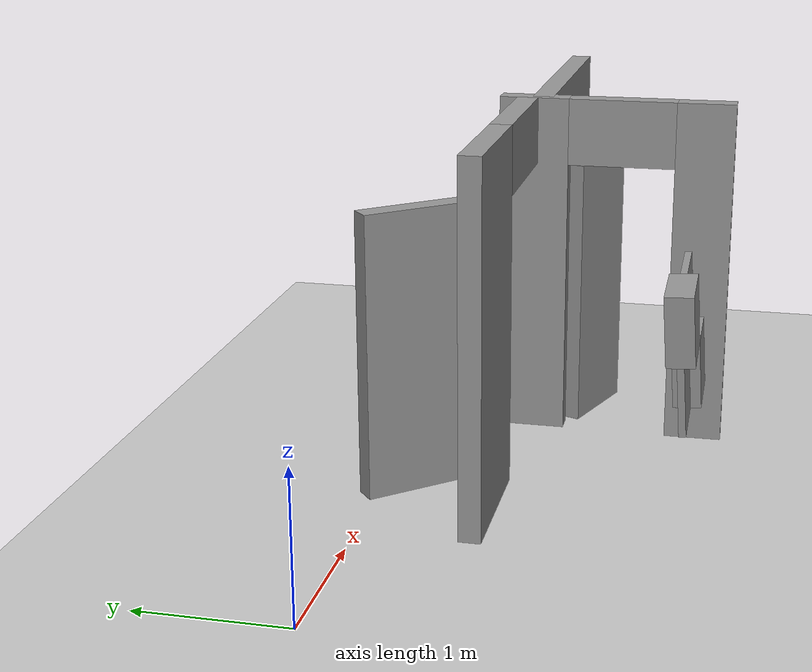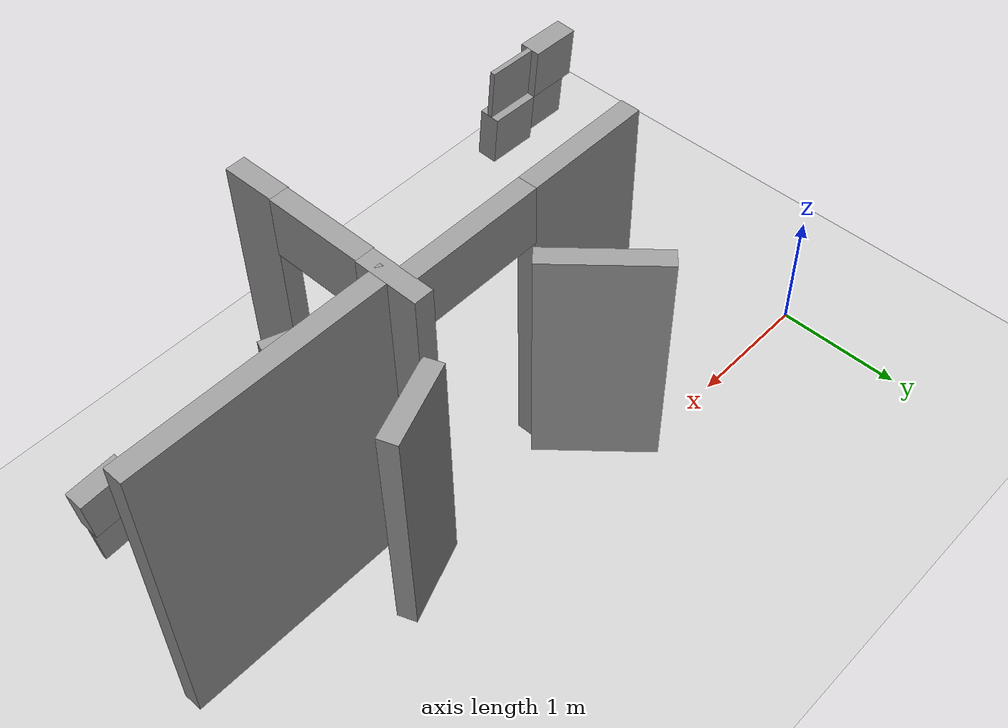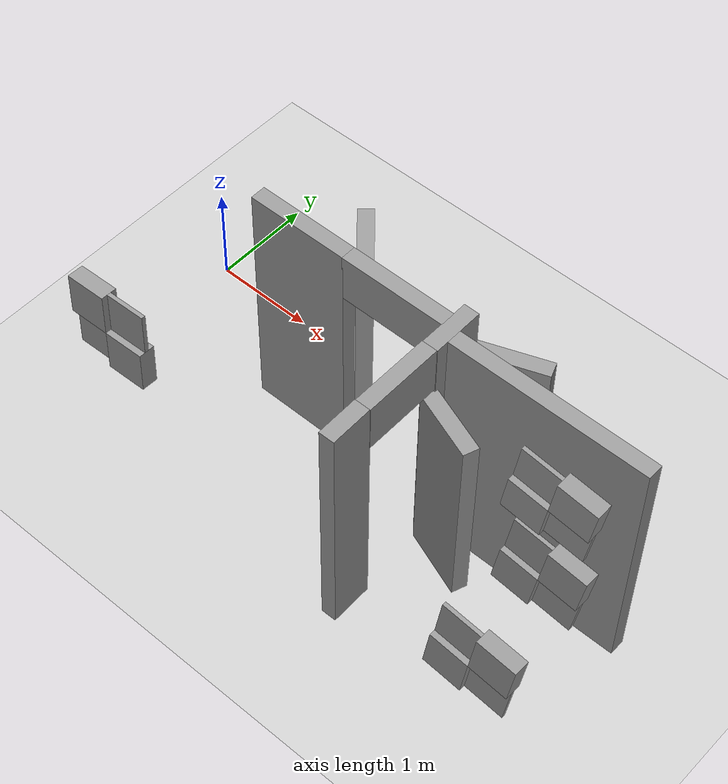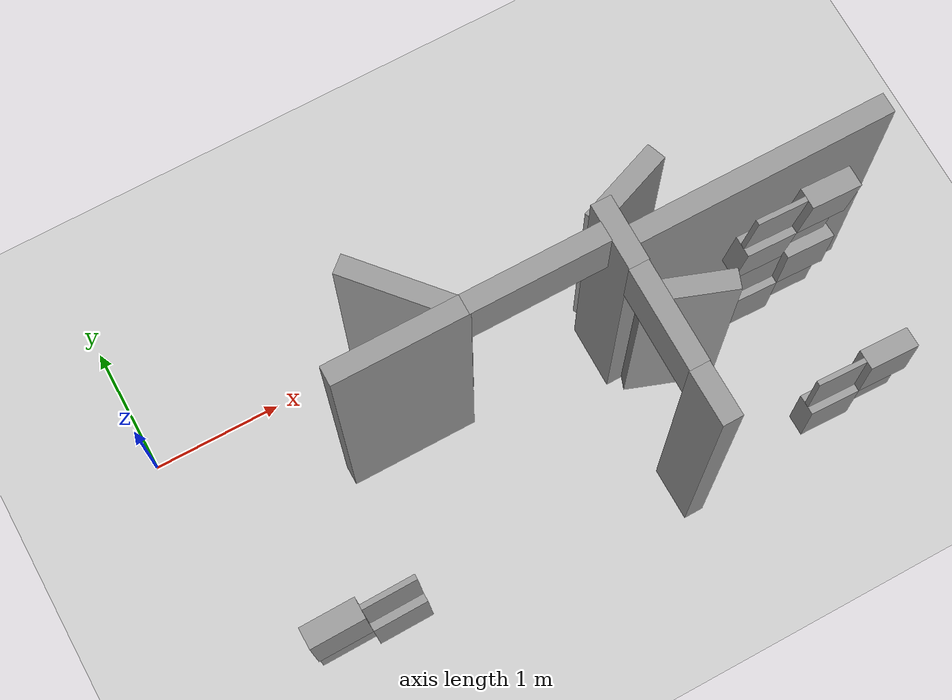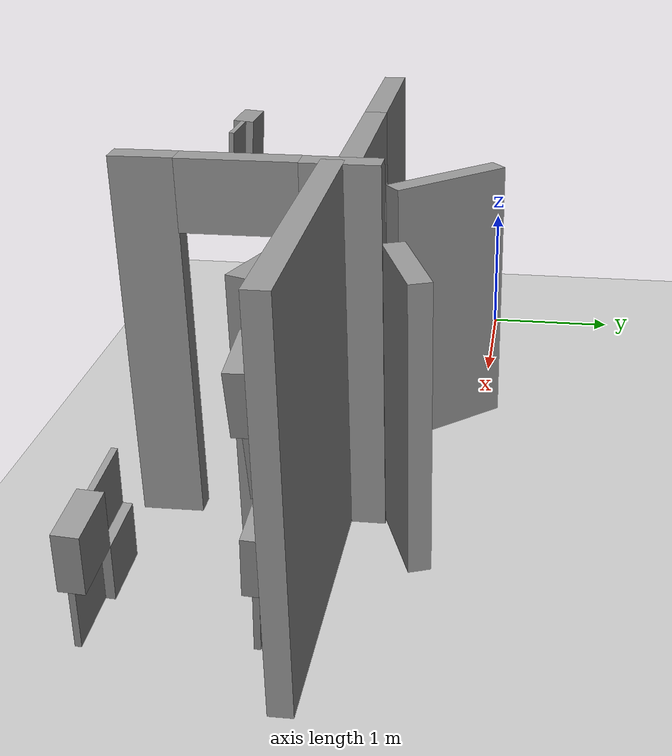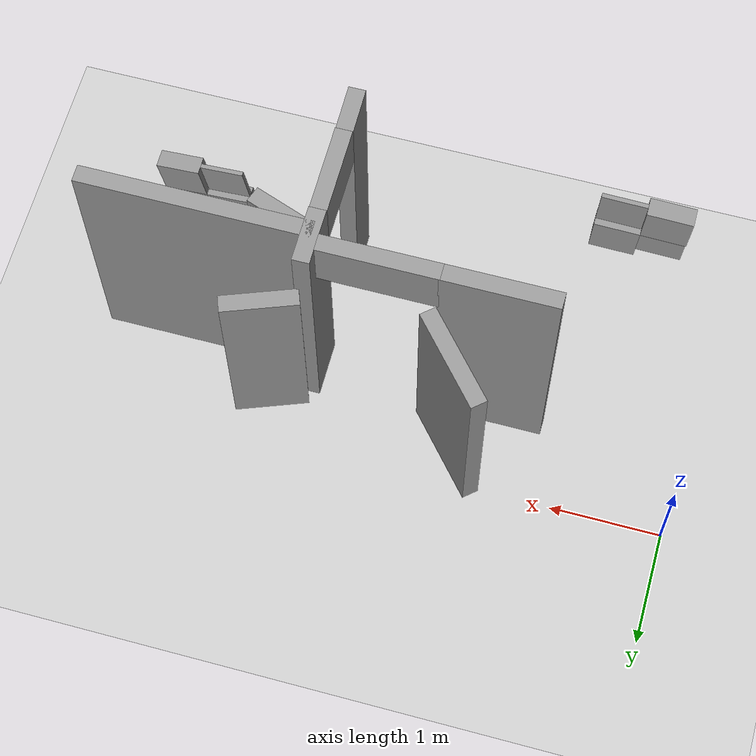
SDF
<sdf version="1.7">
 <world name="default">
  <model name="demo_clean">
   <static>1</static>
   <link name="Wall_21_clone_0_clone_0_clone_clone_clone_clone">
    <gravity>0</gravity>
    <collision name="Wall_21_Collision">
     <geometry><box><size>0.924919 0.15 1.96033</size></box></geometry>
     <pose>0 0 1.25 0 -0 0</pose>
     <surface>
      <friction>
       <ode><mu>1</mu><mu2>1</mu2><fdir1>0 0 0</fdir1><slip1>0</slip1><slip2>0</slip2></ode>
       <torsional>
        <coefficient>1</coefficient>
        <patch_radius>0</patch_radius>
        <surface_radius>0</surface_radius>
        <use_patch_radius>1</use_patch_radius>
        <ode><slip>0</slip></ode>
       </torsional>
      </friction>
      <bounce><restitution_coefficient>0</restitution_coefficient><threshold>1e+06</threshold></bounce>
      <contact>
       <collide_without_contact>0</collide_without_contact>
       <collide_without_contact_bitmask>1</collide_without_contact_bitmask>
       <collide_bitmask>1</collide_bitmask>
       <ode>
        <soft_cfm>0</soft_cfm>
        <soft_erp>0.2</soft_erp>
        <kp>1e+13</kp>
        <kd>1</kd>
        <max_vel>0.01</max_vel>
        <min_depth>0</min_depth>
       </ode>
       <bullet>
        <split_impulse>1</split_impulse>
        <split_impulse_penetration_threshold>-0.01</split_impulse_penetration_threshold>
        <soft_cfm>0</soft_cfm>
        <soft_erp>0.2</soft_erp>
        <kp>1e+13</kp>
        <kd>1</kd>
       </bullet>
      </contact>
     </surface>
    </collision>
    <visual name="Wall_21_Visual">
     <geometry><box><size>0.924919 0.15 1.96033</size></box></geometry>
     <material>
      <script><name>Gazebo/Grey</name><uri>file://media/materials/scripts/gazebo.material</uri></script>
      <ambient>1 1 1 1</ambient>
      <shader type="pixel"><normal_map>__default__</normal_map></shader>
      <diffuse>0.7 0.7 0.7 1</diffuse>
      <specular>0.01 0.01 0.01 1</specular>
      <emissive>0 0 0 1</emissive>
     </material>
     <pose>0 0 1.25 0 -0 0</pose>
    </visual>
    <inertial>
     <inertia><ixx>0</ixx><iyy>0</iyy><izz>0</izz><ixy>0</ixy><ixz>0</ixz><iyz>0</iyz></inertia>
     <mass>1</mass>
    </inertial>
    <pose>2.0073 -0.280742 -0.23202 0 -0 2.28452</pose>
   </link>
   <link name="Wall_21_clone_0_clone_0_clone_clone_clone_clone_clone_clone_clone_clone">
    <gravity>0</gravity>
    <collision name="Wall_21_Collision">
     <geometry><box><size>0.663949 0.15 1.96033</size></box></geometry>
     <pose>0 0 1.25 0 -0 0</pose>
     <surface>
      <friction>
       <ode><mu>1</mu><mu2>1</mu2><fdir1>0 0 0</fdir1><slip1>0</slip1><slip2>0</slip2></ode>
       <torsional>
        <coefficient>1</coefficient>
        <patch_radius>0</patch_radius>
        <surface_radius>0</surface_radius>
        <use_patch_radius>1</use_patch_radius>
        <ode><slip>0</slip></ode>
       </torsional>
      </friction>
      <bounce><restitution_coefficient>0</restitution_coefficient><threshold>1e+06</threshold></bounce>
      <contact>
       <collide_without_contact>0</collide_without_contact>
       <collide_without_contact_bitmask>1</collide_without_contact_bitmask>
       <collide_bitmask>1</collide_bitmask>
       <ode>
        <soft_cfm>0</soft_cfm>
        <soft_erp>0.2</soft_erp>
        <kp>1e+13</kp>
        <kd>1</kd>
        <max_vel>0.01</max_vel>
        <min_depth>0</min_depth>
       </ode>
       <bullet>
        <split_impulse>1</split_impulse>
        <split_impulse_penetration_threshold>-0.01</split_impulse_penetration_threshold>
        <soft_cfm>0</soft_cfm>
        <soft_erp>0.2</soft_erp>
        <kp>1e+13</kp>
        <kd>1</kd>
       </bullet>
      </contact>
     </surface>
    </collision>
    <visual name="Wall_21_Visual">
     <geometry><box><size>0.663949 0.15 1.96033</size></box></geometry>
     <material>
      <script><name>Gazebo/Grey</name><uri>file://media/materials/scripts/gazebo.material</uri></script>
      <ambient>1 1 1 1</ambient>
      <shader type="pixel"><normal_map>__default__</normal_map></shader>
      <diffuse>0.7 0.7 0.7 1</diffuse>
      <specular>0.01 0.01 0.01 1</specular>
      <emissive>0 0 0 1</emissive>
     </material>
     <pose>0 0 1.25 0 -0 0</pose>
    </visual>
    <inertial>
     <inertia><ixx>0</ixx><iyy>0</iyy><izz>0</izz><ixy>0</ixy><ixz>0</ixz><iyz>0</iyz></inertia>
     <mass>1</mass>
    </inertial>
    <pose>3.68306 -1.18793 -0.23202 0 -0 2.79384</pose>
   </link>
   <link name="Wall_21_clone_0_clone_0_clone_clone_clone_clone_clone_clone_clone_clone_clone_clone">
    <gravity>0</gravity>
    <collision name="Wall_21_Collision">
     <geometry><box><size>0.663949 0.15 1.96033</size></box></geometry>
     <pose>0 0 1.25 0 -0 0</pose>
     <surface>
      <friction>
       <ode><mu>1</mu><mu2>1</mu2><fdir1>0 0 0</fdir1><slip1>0</slip1><slip2>0</slip2></ode>
       <torsional>
        <coefficient>1</coefficient>
        <patch_radius>0</patch_radius>
        <surface_radius>0</surface_radius>
        <use_patch_radius>1</use_patch_radius>
        <ode><slip>0</slip></ode>
       </torsional>
      </friction>
      <bounce><restitution_coefficient>0</restitution_coefficient><threshold>1e+06</threshold></bounce>
      <contact>
       <collide_without_contact>0</collide_without_contact>
       <collide_without_contact_bitmask>1</collide_without_contact_bitmask>
       <collide_bitmask>1</collide_bitmask>
       <ode>
        <soft_cfm>0</soft_cfm>
        <soft_erp>0.2</soft_erp>
        <kp>1e+13</kp>
        <kd>1</kd>
        <max_vel>0.01</max_vel>
        <min_depth>0</min_depth>
       </ode>
       <bullet>
        <split_impulse>1</split_impulse>
        <split_impulse_penetration_threshold>-0.01</split_impulse_penetration_threshold>
        <soft_cfm>0</soft_cfm>
        <soft_erp>0.2</soft_erp>
        <kp>1e+13</kp>
        <kd>1</kd>
       </bullet>
      </contact>
     </surface>
    </collision>
    <visual name="Wall_21_Visual">
     <geometry><box><size>0.663949 0.15 1.96033</size></box></geometry>
     <material>
      <script><name>Gazebo/Grey</name><uri>file://media/materials/scripts/gazebo.material</uri></script>
      <ambient>1 1 1 1</ambient>
      <shader type="pixel"><normal_map>__default__</normal_map></shader>
      <diffuse>0.7 0.7 0.7 1</diffuse>
      <specular>0.01 0.01 0.01 1</specular>
      <emissive>0 0 0 1</emissive>
     </material>
     <pose>0 0 1.25 0 -0 0</pose>
    </visual>
    <inertial>
     <inertia><ixx>0</ixx><iyy>0</iyy><izz>0</izz><ixy>0</ixy><ixz>0</ixz><iyz>0</iyz></inertia>
     <mass>1</mass>
    </inertial>
    <pose>3.65792 -0.364043 -0.23202 0 0 -2.77941</pose>
   </link>
   <link name="Wall_28">
    <collision name="Wall_28_Collision">
     <geometry><box><size>1 0.15 2.5</size></box></geometry>
     <pose>0 0 1.25 0 -0 0</pose>
     <surface>
      <friction>
       <ode><mu>1</mu><mu2>1</mu2><fdir1>0 0 0</fdir1><slip1>0</slip1><slip2>0</slip2></ode>
       <torsional>
        <coefficient>1</coefficient>
        <patch_radius>0</patch_radius>
        <surface_radius>0</surface_radius>
        <use_patch_radius>1</use_patch_radius>
        <ode><slip>0</slip></ode>
       </torsional>
      </friction>
      <bounce><restitution_coefficient>0</restitution_coefficient><threshold>1e+06</threshold></bounce>
      <contact>
       <collide_without_contact>0</collide_without_contact>
       <collide_without_contact_bitmask>1</collide_without_contact_bitmask>
       <collide_bitmask>1</collide_bitmask>
       <ode>
        <soft_cfm>0</soft_cfm>
        <soft_erp>0.2</soft_erp>
        <kp>1e+13</kp>
        <kd>1</kd>
        <max_vel>0.01</max_vel>
        <min_depth>0</min_depth>
       </ode>
       <bullet>
        <split_impulse>1</split_impulse>
        <split_impulse_penetration_threshold>-0.01</split_impulse_penetration_threshold>
        <soft_cfm>0</soft_cfm>
        <soft_erp>0.2</soft_erp>
        <kp>1e+13</kp>
        <kd>1</kd>
       </bullet>
      </contact>
     </surface>
    </collision>
    <visual name="Wall_28_Visual">
     <geometry><box><size>1 0.15 2.5</size></box></geometry>
     <material>
      <script><name>Gazebo/Grey</name><uri>file://media/materials/scripts/gazebo.material</uri></script>
      <ambient>1 1 1 1</ambient>
      <shader type="pixel"><normal_map>default</normal_map></shader>
     </material>
     <pose>0 0 1.25 0 -0 0</pose>
    </visual>
    <pose>1.74215 -0.745235 0 0 -0 0</pose>
   </link>
   <link name="Wall_28_clone">
    <gravity>0</gravity>
    <collision name="Wall_28_Collision">
     <geometry><box><size>1.03415 0.15 0.476648</size></box></geometry>
     <pose>0 0 1.25 0 -0 0</pose>
     <surface>
      <friction>
       <ode><mu>1</mu><mu2>1</mu2><fdir1>0 0 0</fdir1><slip1>0</slip1><slip2>0</slip2></ode>
       <torsional>
        <coefficient>1</coefficient>
        <patch_radius>0</patch_radius>
        <surface_radius>0</surface_radius>
        <use_patch_radius>1</use_patch_radius>
        <ode><slip>0</slip></ode>
       </torsional>
      </friction>
      <bounce><restitution_coefficient>0</restitution_coefficient><threshold>1e+06</threshold></bounce>
      <contact>
       <collide_without_contact>0</collide_without_contact>
       <collide_without_contact_bitmask>1</collide_without_contact_bitmask>
       <collide_bitmask>1</collide_bitmask>
       <ode>
        <soft_cfm>0</soft_cfm>
        <soft_erp>0.2</soft_erp>
        <kp>1e+13</kp>
        <kd>1</kd>
        <max_vel>0.01</max_vel>
        <min_depth>0</min_depth>
       </ode>
       <bullet>
        <split_impulse>1</split_impulse>
        <split_impulse_penetration_threshold>-0.01</split_impulse_penetration_threshold>
        <soft_cfm>0</soft_cfm>
        <soft_erp>0.2</soft_erp>
        <kp>1e+13</kp>
        <kd>1</kd>
       </bullet>
      </contact>
     </surface>
    </collision>
    <visual name="Wall_28_Visual">
     <geometry><box><size>1.03415 0.15 0.476648</size></box></geometry>
     <material>
      <script><name>Gazebo/Grey</name><uri>file://media/materials/scripts/gazebo.material</uri></script>
      <ambient>1 1 1 1</ambient>
      <shader type="pixel"><normal_map>__default__</normal_map></shader>
      <diffuse>0.7 0.7 0.7 1</diffuse>
      <specular>0.01 0.01 0.01 1</specular>
      <emissive>0 0 0 1</emissive>
     </material>
     <pose>0 0 1.25 0 -0 0</pose>
    </visual>
    <inertial>
     <inertia><ixx>0</ixx><iyy>0</iyy><izz>0</izz><ixy>0</ixy><ixz>0</ixz><iyz>0</iyz></inertia>
     <mass>1</mass>
    </inertial>
    <pose>2.7476 -0.745235 1.01168 0 -0 0</pose>
   </link>
   <link name="Wall_28_clone_clone_clone_clone">
    <gravity>0</gravity>
    <collision name="Wall_28_Collision">
     <geometry><box><size>0.765639 0.15 0.476648</size></box></geometry>
     <pose>0 0 1.25 0 -0 0</pose>
     <surface>
      <friction>
       <ode><mu>1</mu><mu2>1</mu2><fdir1>0 0 0</fdir1><slip1>0</slip1><slip2>0</slip2></ode>
       <torsional>
        <coefficient>1</coefficient>
        <patch_radius>0</patch_radius>
        <surface_radius>0</surface_radius>
        <use_patch_radius>1</use_patch_radius>
        <ode><slip>0</slip></ode>
       </torsional>
      </friction>
      <bounce><restitution_coefficient>0</restitution_coefficient><threshold>1e+06</threshold></bounce>
      <contact>
       <collide_without_contact>0</collide_without_contact>
       <collide_without_contact_bitmask>1</collide_without_contact_bitmask>
       <collide_bitmask>1</collide_bitmask>
       <ode>
        <soft_cfm>0</soft_cfm>
        <soft_erp>0.2</soft_erp>
        <kp>1e+13</kp>
        <kd>1</kd>
        <max_vel>0.01</max_vel>
        <min_depth>0</min_depth>
       </ode>
       <bullet>
        <split_impulse>1</split_impulse>
        <split_impulse_penetration_threshold>-0.01</split_impulse_penetration_threshold>
        <soft_cfm>0</soft_cfm>
        <soft_erp>0.2</soft_erp>
        <kp>1e+13</kp>
        <kd>1</kd>
       </bullet>
      </contact>
     </surface>
    </collision>
    <visual name="Wall_28_Visual">
     <geometry><box><size>0.765639 0.15 0.476648</size></box></geometry>
     <material>
      <script><name>Gazebo/Grey</name><uri>file://media/materials/scripts/gazebo.material</uri></script>
      <ambient>1 1 1 1</ambient>
      <shader type="pixel"><normal_map>__default__</normal_map></shader>
     </material>
     <pose>0 0 1.25 0 -0 0</pose>
    </visual>
    <inertial>
     <inertia><ixx>0</ixx><iyy>0</iyy><izz>0</izz><ixy>0</ixy><ixz>0</ixz><iyz>0</iyz></inertia>
     <mass>1</mass>
    </inertial>
    <pose>3.33099 -1.42343 1.01168 0 0 -1.57004</pose>
   </link>
   <link name="Wall_30">
    <collision name="Wall_30_Collision">
     <geometry><box><size>0.5 0.15 2.5</size></box></geometry>
     <pose>0 0 1.25 0 -0 0</pose>
     <surface>
      <friction>
       <ode><mu>1</mu><mu2>1</mu2><fdir1>0 0 0</fdir1><slip1>0</slip1><slip2>0</slip2></ode>
       <torsional>
        <coefficient>1</coefficient>
        <patch_radius>0</patch_radius>
        <surface_radius>0</surface_radius>
        <use_patch_radius>1</use_patch_radius>
        <ode><slip>0</slip></ode>
       </torsional>
      </friction>
      <bounce><restitution_coefficient>0</restitution_coefficient><threshold>1e+06</threshold></bounce>
      <contact>
       <collide_without_contact>0</collide_without_contact>
       <collide_without_contact_bitmask>1</collide_without_contact_bitmask>
       <collide_bitmask>1</collide_bitmask>
       <ode>
        <soft_cfm>0</soft_cfm>
        <soft_erp>0.2</soft_erp>
        <kp>1e+13</kp>
        <kd>1</kd>
        <max_vel>0.01</max_vel>
        <min_depth>0</min_depth>
       </ode>
       <bullet>
        <split_impulse>1</split_impulse>
        <split_impulse_penetration_threshold>-0.01</split_impulse_penetration_threshold>
        <soft_cfm>0</soft_cfm>
        <soft_erp>0.2</soft_erp>
        <kp>1e+13</kp>
        <kd>1</kd>
       </bullet>
      </contact>
     </surface>
    </collision>
    <visual name="Wall_30_Visual">
     <geometry><box><size>0.5 0.15 2.5</size></box></geometry>
     <material>
      <script><name>Gazebo/Grey</name><uri>file://media/materials/scripts/gazebo.material</uri></script>
      <ambient>1 1 1 1</ambient>
      <shader type="pixel"><normal_map>default</normal_map></shader>
     </material>
     <pose>0 0 1.25 0 -0 0</pose>
    </visual>
    <pose>3.33603 -0.791518 0 0 0 -1.5708</pose>
   </link>
   <link name="Wall_33">
    <collision name="Wall_33_Collision">
     <geometry><box><size>2 0.15 2.5</size></box></geometry>
     <pose>0 0 1.25 0 -0 0</pose>
     <surface>
      <friction>
       <ode><mu>1</mu><mu2>1</mu2><fdir1>0 0 0</fdir1><slip1>0</slip1><slip2>0</slip2></ode>
       <torsional>
        <coefficient>1</coefficient>
        <patch_radius>0</patch_radius>
        <surface_radius>0</surface_radius>
        <use_patch_radius>1</use_patch_radius>
        <ode><slip>0</slip></ode>
       </torsional>
      </friction>
      <bounce><restitution_coefficient>0</restitution_coefficient><threshold>1e+06</threshold></bounce>
      <contact>
       <collide_without_contact>0</collide_without_contact>
       <collide_without_contact_bitmask>1</collide_without_contact_bitmask>
       <collide_bitmask>1</collide_bitmask>
       <ode>
        <soft_cfm>0</soft_cfm>
        <soft_erp>0.2</soft_erp>
        <kp>1e+13</kp>
        <kd>1</kd>
        <max_vel>0.01</max_vel>
        <min_depth>0</min_depth>
       </ode>
       <bullet>
        <split_impulse>1</split_impulse>
        <split_impulse_penetration_threshold>-0.01</split_impulse_penetration_threshold>
        <soft_cfm>0</soft_cfm>
        <soft_erp>0.2</soft_erp>
        <kp>1e+13</kp>
        <kd>1</kd>
       </bullet>
      </contact>
     </surface>
    </collision>
    <visual name="Wall_33_Visual">
     <geometry><box><size>2 0.15 2.5</size></box></geometry>
     <material>
      <script><name>Gazebo/Grey</name><uri>file://media/materials/scripts/gazebo.material</uri></script>
      <ambient>1 1 1 1</ambient>
      <shader type="pixel"><normal_map>default</normal_map></shader>
     </material>
     <pose>0 0 1.25 0 -0 0</pose>
    </visual>
    <pose>4.32187 -0.846909 0 0 -0 3.14159</pose>
   </link>
   <link name="Wall_51">
    <collision name="Wall_51_Collision">
     <geometry><box><size>0.412102 0.15 2.5</size></box></geometry>
     <pose>0 0 1.25 0 -0 0</pose>
     <surface>
      <friction>
       <ode><mu>1</mu><mu2>1</mu2><fdir1>0 0 0</fdir1><slip1>0</slip1><slip2>0</slip2></ode>
       <torsional>
        <coefficient>1</coefficient>
        <patch_radius>0</patch_radius>
        <surface_radius>0</surface_radius>
        <use_patch_radius>1</use_patch_radius>
        <ode><slip>0</slip></ode>
       </torsional>
      </friction>
      <bounce><restitution_coefficient>0</restitution_coefficient><threshold>1e+06</threshold></bounce>
      <contact>
       <collide_without_contact>0</collide_without_contact>
       <collide_without_contact_bitmask>1</collide_without_contact_bitmask>
       <collide_bitmask>1</collide_bitmask>
       <ode>
        <soft_cfm>0</soft_cfm>
        <soft_erp>0.2</soft_erp>
        <kp>1e+13</kp>
        <kd>1</kd>
        <max_vel>0.01</max_vel>
        <min_depth>0</min_depth>
       </ode>
       <bullet>
        <split_impulse>1</split_impulse>
        <split_impulse_penetration_threshold>-0.01</split_impulse_penetration_threshold>
        <soft_cfm>0</soft_cfm>
        <soft_erp>0.2</soft_erp>
        <kp>1e+13</kp>
        <kd>1</kd>
       </bullet>
      </contact>
     </surface>
    </collision>
    <visual name="Wall_51_Visual">
     <geometry><box><size>0.412102 0.15 2.5</size></box></geometry>
     <material>
      <script><name>Gazebo/Grey</name><uri>file://media/materials/scripts/gazebo.material</uri></script>
      <ambient>1 1 1 1</ambient>
      <shader type="pixel"><normal_map>default</normal_map></shader>
     </material>
     <pose>0 0 1.25 0 -0 0</pose>
    </visual>
    <pose>3.3292 -2.00839 0 0 0 -1.55914</pose>
   </link>
  </model>
  <model name="ground_plane">
   <static>1</static>
   <link name="link">
    <collision name="collision">
     <geometry><plane><normal>0 0 1</normal><size>100 100</size></plane></geometry>
     <surface>
      <contact><collide_bitmask>65535</collide_bitmask></contact>
      <friction><ode><mu>100</mu><mu2>50</mu2></ode></friction>
     </surface>
    </collision>
    <visual name="visual">
     <cast_shadows>0</cast_shadows>
     <geometry><plane><normal>0 0 1</normal><size>100 100</size></plane></geometry>
     <material>
      <script><uri>file://media/materials/scripts/gazebo.material</uri><name>Gazebo/Grey</name></script>
     </material>
    </visual>
   </link>
  </model>
  <model name="wall_slate_4">
   <static>1</static>
   <link name="link_0">
    <inertial><mass>1</mass></inertial>
    <gravity>0</gravity>
    <visual name="visual">
     <pose>0 0.2 0.2 0 -0 0</pose>
     <geometry><box><size>0.16 0.4 0.4</size></box></geometry>
     <material>
      <lighting>1</lighting>
      <script><uri>file://media/materials/scripts/gazebo.material</uri><name>Gazebo/Grey</name></script>
      <shader type="pixel"><normal_map>__default__</normal_map></shader>
      <ambient>0.3 0.3 0.3 1</ambient>
      <diffuse>0.7 0.7 0.7 1</diffuse>
      <specular>0.01 0.01 0.01 1</specular>
      <emissive>0 0 0 1</emissive>
     </material>
    </visual>
    <visual name="ModelPreview_0::link_0::visual_1">
     <pose>0 0.2 -0.2 0 -0 0</pose>
     <geometry><box><size>0.04 0.4 0.4</size></box></geometry>
     <material>
      <lighting>1</lighting>
      <script><uri>file://media/materials/scripts/gazebo.material</uri><name>Gazebo/Grey</name></script>
      <shader type="pixel"><normal_map>__default__</normal_map></shader>
      <ambient>0.3 0.3 0.3 1</ambient>
      <diffuse>0.7 0.7 0.7 1</diffuse>
      <specular>0.01 0.01 0.01 1</specular>
      <emissive>0 0 0 1</emissive>
     </material>
    </visual>
    <visual name="ModelPreview_0::link_0::visual_2">
     <pose>0 -0.2 0.2 0 -0 0</pose>
     <geometry><box><size>0.04 0.4 0.4</size></box></geometry>
     <material>
      <lighting>1</lighting>
      <script><uri>file://media/materials/scripts/gazebo.material</uri><name>Gazebo/Grey</name></script>
      <shader type="pixel"><normal_map>__default__</normal_map></shader>
      <ambient>0.3 0.3 0.3 1</ambient>
      <diffuse>0.7 0.7 0.7 1</diffuse>
      <specular>0.01 0.01 0.01 1</specular>
      <emissive>0 0 0 1</emissive>
     </material>
    </visual>
    <visual name="ModelPreview_0::link_0::visual_3">
     <pose>0 -0.2 -0.2 0 -0 0</pose>
     <geometry><box><size>0.16 0.4 0.4</size></box></geometry>
     <material>
      <lighting>1</lighting>
      <script><uri>file://media/materials/scripts/gazebo.material</uri><name>Gazebo/Grey</name></script>
      <shader type="pixel"><normal_map>__default__</normal_map></shader>
      <ambient>0.3 0.3 0.3 1</ambient>
      <diffuse>0.7 0.7 0.7 1</diffuse>
      <specular>0.01 0.01 0.01 1</specular>
      <emissive>0 0 0 1</emissive>
     </material>
    </visual>
    <collision name="collision_2">
     <pose>0 -0.2 0.2 0 -0 0</pose>
     <geometry><box><size>0.04 0.4 0.4</size></box></geometry>
     <surface>
      <friction>
       <ode><mu>1</mu><mu2>1</mu2><fdir1>0 0 0</fdir1><slip1>0</slip1><slip2>0</slip2></ode>
       <torsional>
        <coefficient>1</coefficient>
        <patch_radius>0</patch_radius>
        <surface_radius>0</surface_radius>
        <use_patch_radius>1</use_patch_radius>
        <ode><slip>0</slip></ode>
       </torsional>
      </friction>
      <bounce><restitution_coefficient>0</restitution_coefficient><threshold>1e+06</threshold></bounce>
      <contact>
       <collide_without_contact>0</collide_without_contact>
       <collide_without_contact_bitmask>1</collide_without_contact_bitmask>
       <collide_bitmask>1</collide_bitmask>
       <ode>
        <soft_cfm>0</soft_cfm>
        <soft_erp>0.2</soft_erp>
        <kp>1e+13</kp>
        <kd>1</kd>
        <max_vel>0.01</max_vel>
        <min_depth>0</min_depth>
       </ode>
       <bullet>
        <split_impulse>1</split_impulse>
        <split_impulse_penetration_threshold>-0.01</split_impulse_penetration_threshold>
        <soft_cfm>0</soft_cfm>
        <soft_erp>0.2</soft_erp>
        <kp>1e+13</kp>
        <kd>1</kd>
       </bullet>
      </contact>
     </surface>
    </collision>
    <collision name="collision_1">
     <pose>0 0.2 -0.2 0 -0 0</pose>
     <geometry><box><size>0.04 0.4 0.4</size></box></geometry>
     <surface>
      <friction>
       <ode><mu>1</mu><mu2>1</mu2><fdir1>0 0 0</fdir1><slip1>0</slip1><slip2>0</slip2></ode>
       <torsional>
        <coefficient>1</coefficient>
        <patch_radius>0</patch_radius>
        <surface_radius>0</surface_radius>
        <use_patch_radius>1</use_patch_radius>
        <ode><slip>0</slip></ode>
       </torsional>
      </friction>
      <bounce><restitution_coefficient>0</restitution_coefficient><threshold>1e+06</threshold></bounce>
      <contact>
       <collide_without_contact>0</collide_without_contact>
       <collide_without_contact_bitmask>1</collide_without_contact_bitmask>
       <collide_bitmask>1</collide_bitmask>
       <ode>
        <soft_cfm>0</soft_cfm>
        <soft_erp>0.2</soft_erp>
        <kp>1e+13</kp>
        <kd>1</kd>
        <max_vel>0.01</max_vel>
        <min_depth>0</min_depth>
       </ode>
       <bullet>
        <split_impulse>1</split_impulse>
        <split_impulse_penetration_threshold>-0.01</split_impulse_penetration_threshold>
        <soft_cfm>0</soft_cfm>
        <soft_erp>0.2</soft_erp>
        <kp>1e+13</kp>
        <kd>1</kd>
       </bullet>
      </contact>
     </surface>
    </collision>
    <collision name="collision_4">
     <pose>0 0.2 0.2 0 -0 0</pose>
     <geometry><box><size>0.16 0.4 0.4</size></box></geometry>
     <surface>
      <friction>
       <ode><mu>1</mu><mu2>1</mu2><fdir1>0 0 0</fdir1><slip1>0</slip1><slip2>0</slip2></ode>
       <torsional>
        <coefficient>1</coefficient>
        <patch_radius>0</patch_radius>
        <surface_radius>0</surface_radius>
        <use_patch_radius>1</use_patch_radius>
        <ode><slip>0</slip></ode>
       </torsional>
      </friction>
      <bounce><restitution_coefficient>0</restitution_coefficient><threshold>1e+06</threshold></bounce>
      <contact>
       <collide_without_contact>0</collide_without_contact>
       <collide_without_contact_bitmask>1</collide_without_contact_bitmask>
       <collide_bitmask>1</collide_bitmask>
       <ode>
        <soft_cfm>0</soft_cfm>
        <soft_erp>0.2</soft_erp>
        <kp>1e+13</kp>
        <kd>1</kd>
        <max_vel>0.01</max_vel>
        <min_depth>0</min_depth>
       </ode>
       <bullet>
        <split_impulse>1</split_impulse>
        <split_impulse_penetration_threshold>-0.01</split_impulse_penetration_threshold>
        <soft_cfm>0</soft_cfm>
        <soft_erp>0.2</soft_erp>
        <kp>1e+13</kp>
        <kd>1</kd>
       </bullet>
      </contact>
     </surface>
    </collision>
    <collision name="collision_3">
     <pose>0 -0.2 -0.2 0 -0 0</pose>
     <geometry><box><size>0.16 0.4 0.4</size></box></geometry>
     <surface>
      <friction>
       <ode><mu>1</mu><mu2>1</mu2><fdir1>0 0 0</fdir1><slip1>0</slip1><slip2>0</slip2></ode>
       <torsional>
        <coefficient>1</coefficient>
        <patch_radius>0</patch_radius>
        <surface_radius>0</surface_radius>
        <use_patch_radius>1</use_patch_radius>
        <ode><slip>0</slip></ode>
       </torsional>
      </friction>
      <bounce><restitution_coefficient>0</restitution_coefficient><threshold>1e+06</threshold></bounce>
      <contact>
       <collide_without_contact>0</collide_without_contact>
       <collide_without_contact_bitmask>1</collide_without_contact_bitmask>
       <collide_bitmask>1</collide_bitmask>
       <ode>
        <soft_cfm>0</soft_cfm>
        <soft_erp>0.2</soft_erp>
        <kp>1e+13</kp>
        <kd>1</kd>
        <max_vel>0.01</max_vel>
        <min_depth>0</min_depth>
       </ode>
       <bullet>
        <split_impulse>1</split_impulse>
        <split_impulse_penetration_threshold>-0.01</split_impulse_penetration_threshold>
        <soft_cfm>0</soft_cfm>
        <soft_erp>0.2</soft_erp>
        <kp>1e+13</kp>
        <kd>1</kd>
       </bullet>
      </contact>
     </surface>
    </collision>
   </link>
   <pose>4.62187 -1.02191 1.6 -0.14 0.02 -1.5659</pose>
  </model>
  <model name="wall_slate_35">
   <static>1</static>
   <link name="link_0">
    <inertial><mass>1</mass></inertial>
    <gravity>0</gravity>
    <visual name="visual">
     <pose>0 0.2 0.2 0 -0 0</pose>
     <geometry><box><size>0.16 0.4 0.4</size></box></geometry>
     <material>
      <lighting>1</lighting>
      <script><uri>file://media/materials/scripts/gazebo.material</uri><name>Gazebo/Grey</name></script>
      <shader type="pixel"><normal_map>__default__</normal_map></shader>
      <ambient>0.3 0.3 0.3 1</ambient>
      <diffuse>0.7 0.7 0.7 1</diffuse>
      <specular>0.01 0.01 0.01 1</specular>
      <emissive>0 0 0 1</emissive>
     </material>
    </visual>
    <visual name="ModelPreview_0::link_0::visual_1">
     <pose>0 0.2 -0.2 0 -0 0</pose>
     <geometry><box><size>0.04 0.4 0.4</size></box></geometry>
     <material>
      <lighting>1</lighting>
      <script><uri>file://media/materials/scripts/gazebo.material</uri><name>Gazebo/Grey</name></script>
      <shader type="pixel"><normal_map>__default__</normal_map></shader>
      <ambient>0.3 0.3 0.3 1</ambient>
      <diffuse>0.7 0.7 0.7 1</diffuse>
      <specular>0.01 0.01 0.01 1</specular>
      <emissive>0 0 0 1</emissive>
     </material>
    </visual>
    <visual name="ModelPreview_0::link_0::visual_2">
     <pose>0 -0.2 0.2 0 -0 0</pose>
     <geometry><box><size>0.04 0.4 0.4</size></box></geometry>
     <material>
      <lighting>1</lighting>
      <script><uri>file://media/materials/scripts/gazebo.material</uri><name>Gazebo/Grey</name></script>
      <shader type="pixel"><normal_map>__default__</normal_map></shader>
      <ambient>0.3 0.3 0.3 1</ambient>
      <diffuse>0.7 0.7 0.7 1</diffuse>
      <specular>0.01 0.01 0.01 1</specular>
      <emissive>0 0 0 1</emissive>
     </material>
    </visual>
    <visual name="ModelPreview_0::link_0::visual_3">
     <pose>0 -0.2 -0.2 0 -0 0</pose>
     <geometry><box><size>0.16 0.4 0.4</size></box></geometry>
     <material>
      <lighting>1</lighting>
      <script><uri>file://media/materials/scripts/gazebo.material</uri><name>Gazebo/Grey</name></script>
      <shader type="pixel"><normal_map>__default__</normal_map></shader>
      <ambient>0.3 0.3 0.3 1</ambient>
      <diffuse>0.7 0.7 0.7 1</diffuse>
      <specular>0.01 0.01 0.01 1</specular>
      <emissive>0 0 0 1</emissive>
     </material>
    </visual>
    <collision name="collision_2">
     <pose>0 -0.2 0.2 0 -0 0</pose>
     <geometry><box><size>0.04 0.4 0.4</size></box></geometry>
     <surface>
      <friction>
       <ode><mu>1</mu><mu2>1</mu2><fdir1>0 0 0</fdir1><slip1>0</slip1><slip2>0</slip2></ode>
       <torsional>
        <coefficient>1</coefficient>
        <patch_radius>0</patch_radius>
        <surface_radius>0</surface_radius>
        <use_patch_radius>1</use_patch_radius>
        <ode><slip>0</slip></ode>
       </torsional>
      </friction>
      <bounce><restitution_coefficient>0</restitution_coefficient><threshold>1e+06</threshold></bounce>
      <contact>
       <collide_without_contact>0</collide_without_contact>
       <collide_without_contact_bitmask>1</collide_without_contact_bitmask>
       <collide_bitmask>1</collide_bitmask>
       <ode>
        <soft_cfm>0</soft_cfm>
        <soft_erp>0.2</soft_erp>
        <kp>1e+13</kp>
        <kd>1</kd>
        <max_vel>0.01</max_vel>
        <min_depth>0</min_depth>
       </ode>
       <bullet>
        <split_impulse>1</split_impulse>
        <split_impulse_penetration_threshold>-0.01</split_impulse_penetration_threshold>
        <soft_cfm>0</soft_cfm>
        <soft_erp>0.2</soft_erp>
        <kp>1e+13</kp>
        <kd>1</kd>
       </bullet>
      </contact>
     </surface>
    </collision>
    <collision name="collision_1">
     <pose>0 0.2 -0.2 0 -0 0</pose>
     <geometry><box><size>0.04 0.4 0.4</size></box></geometry>
     <surface>
      <friction>
       <ode><mu>1</mu><mu2>1</mu2><fdir1>0 0 0</fdir1><slip1>0</slip1><slip2>0</slip2></ode>
       <torsional>
        <coefficient>1</coefficient>
        <patch_radius>0</patch_radius>
        <surface_radius>0</surface_radius>
        <use_patch_radius>1</use_patch_radius>
        <ode><slip>0</slip></ode>
       </torsional>
      </friction>
      <bounce><restitution_coefficient>0</restitution_coefficient><threshold>1e+06</threshold></bounce>
      <contact>
       <collide_without_contact>0</collide_without_contact>
       <collide_without_contact_bitmask>1</collide_without_contact_bitmask>
       <collide_bitmask>1</collide_bitmask>
       <ode>
        <soft_cfm>0</soft_cfm>
        <soft_erp>0.2</soft_erp>
        <kp>1e+13</kp>
        <kd>1</kd>
        <max_vel>0.01</max_vel>
        <min_depth>0</min_depth>
       </ode>
       <bullet>
        <split_impulse>1</split_impulse>
        <split_impulse_penetration_threshold>-0.01</split_impulse_penetration_threshold>
        <soft_cfm>0</soft_cfm>
        <soft_erp>0.2</soft_erp>
        <kp>1e+13</kp>
        <kd>1</kd>
       </bullet>
      </contact>
     </surface>
    </collision>
    <collision name="collision_4">
     <pose>0 0.2 0.2 0 -0 0</pose>
     <geometry><box><size>0.16 0.4 0.4</size></box></geometry>
     <surface>
      <friction>
       <ode><mu>1</mu><mu2>1</mu2><fdir1>0 0 0</fdir1><slip1>0</slip1><slip2>0</slip2></ode>
       <torsional>
        <coefficient>1</coefficient>
        <patch_radius>0</patch_radius>
        <surface_radius>0</surface_radius>
        <use_patch_radius>1</use_patch_radius>
        <ode><slip>0</slip></ode>
       </torsional>
      </friction>
      <bounce><restitution_coefficient>0</restitution_coefficient><threshold>1e+06</threshold></bounce>
      <contact>
       <collide_without_contact>0</collide_without_contact>
       <collide_without_contact_bitmask>1</collide_without_contact_bitmask>
       <collide_bitmask>1</collide_bitmask>
       <ode>
        <soft_cfm>0</soft_cfm>
        <soft_erp>0.2</soft_erp>
        <kp>1e+13</kp>
        <kd>1</kd>
        <max_vel>0.01</max_vel>
        <min_depth>0</min_depth>
       </ode>
       <bullet>
        <split_impulse>1</split_impulse>
        <split_impulse_penetration_threshold>-0.01</split_impulse_penetration_threshold>
        <soft_cfm>0</soft_cfm>
        <soft_erp>0.2</soft_erp>
        <kp>1e+13</kp>
        <kd>1</kd>
       </bullet>
      </contact>
     </surface>
    </collision>
    <collision name="collision_3">
     <pose>0 -0.2 -0.2 0 -0 0</pose>
     <geometry><box><size>0.16 0.4 0.4</size></box></geometry>
     <surface>
      <friction>
       <ode><mu>1</mu><mu2>1</mu2><fdir1>0 0 0</fdir1><slip1>0</slip1><slip2>0</slip2></ode>
       <torsional>
        <coefficient>1</coefficient>
        <patch_radius>0</patch_radius>
        <surface_radius>0</surface_radius>
        <use_patch_radius>1</use_patch_radius>
        <ode><slip>0</slip></ode>
       </torsional>
      </friction>
      <bounce><restitution_coefficient>0</restitution_coefficient><threshold>1e+06</threshold></bounce>
      <contact>
       <collide_without_contact>0</collide_without_contact>
       <collide_without_contact_bitmask>1</collide_without_contact_bitmask>
       <collide_bitmask>1</collide_bitmask>
       <ode>
        <soft_cfm>0</soft_cfm>
        <soft_erp>0.2</soft_erp>
        <kp>1e+13</kp>
        <kd>1</kd>
        <max_vel>0.01</max_vel>
        <min_depth>0</min_depth>
       </ode>
       <bullet>
        <split_impulse>1</split_impulse>
        <split_impulse_penetration_threshold>-0.01</split_impulse_penetration_threshold>
        <soft_cfm>0</soft_cfm>
        <soft_erp>0.2</soft_erp>
        <kp>1e+13</kp>
        <kd>1</kd>
       </bullet>
      </contact>
     </surface>
    </collision>
   </link>
   <pose>4.71503 -2.02059 0.6 -0.1 -0.06 -1.57626</pose>
  </model>
  <model name="wall_slate_56">
   <static>1</static>
   <link name="link_0">
    <inertial><mass>1</mass></inertial>
    <gravity>0</gravity>
    <visual name="visual">
     <pose>0 0.2 0.2 0 -0 0</pose>
     <geometry><box><size>0.16 0.4 0.4</size></box></geometry>
     <material>
      <lighting>1</lighting>
      <script><uri>file://media/materials/scripts/gazebo.material</uri><name>Gazebo/Grey</name></script>
      <shader type="pixel"><normal_map>__default__</normal_map></shader>
      <ambient>0.3 0.3 0.3 1</ambient>
      <diffuse>0.7 0.7 0.7 1</diffuse>
      <specular>0.01 0.01 0.01 1</specular>
      <emissive>0 0 0 1</emissive>
     </material>
    </visual>
    <visual name="ModelPreview_0::link_0::visual_1">
     <pose>0 0.2 -0.2 0 -0 0</pose>
     <geometry><box><size>0.04 0.4 0.4</size></box></geometry>
     <material>
      <lighting>1</lighting>
      <script><uri>file://media/materials/scripts/gazebo.material</uri><name>Gazebo/Grey</name></script>
      <shader type="pixel"><normal_map>__default__</normal_map></shader>
      <ambient>0.3 0.3 0.3 1</ambient>
      <diffuse>0.7 0.7 0.7 1</diffuse>
      <specular>0.01 0.01 0.01 1</specular>
      <emissive>0 0 0 1</emissive>
     </material>
    </visual>
    <visual name="ModelPreview_0::link_0::visual_2">
     <pose>0 -0.2 0.2 0 -0 0</pose>
     <geometry><box><size>0.04 0.4 0.4</size></box></geometry>
     <material>
      <lighting>1</lighting>
      <script><uri>file://media/materials/scripts/gazebo.material</uri><name>Gazebo/Grey</name></script>
      <shader type="pixel"><normal_map>__default__</normal_map></shader>
      <ambient>0.3 0.3 0.3 1</ambient>
      <diffuse>0.7 0.7 0.7 1</diffuse>
      <specular>0.01 0.01 0.01 1</specular>
      <emissive>0 0 0 1</emissive>
     </material>
    </visual>
    <visual name="ModelPreview_0::link_0::visual_3">
     <pose>0 -0.2 -0.2 0 -0 0</pose>
     <geometry><box><size>0.16 0.4 0.4</size></box></geometry>
     <material>
      <lighting>1</lighting>
      <script><uri>file://media/materials/scripts/gazebo.material</uri><name>Gazebo/Grey</name></script>
      <shader type="pixel"><normal_map>__default__</normal_map></shader>
      <ambient>0.3 0.3 0.3 1</ambient>
      <diffuse>0.7 0.7 0.7 1</diffuse>
      <specular>0.01 0.01 0.01 1</specular>
      <emissive>0 0 0 1</emissive>
     </material>
    </visual>
    <collision name="collision_2">
     <pose>0 -0.2 0.2 0 -0 0</pose>
     <geometry><box><size>0.04 0.4 0.4</size></box></geometry>
     <surface>
      <friction>
       <ode><mu>1</mu><mu2>1</mu2><fdir1>0 0 0</fdir1><slip1>0</slip1><slip2>0</slip2></ode>
       <torsional>
        <coefficient>1</coefficient>
        <patch_radius>0</patch_radius>
        <surface_radius>0</surface_radius>
        <use_patch_radius>1</use_patch_radius>
        <ode><slip>0</slip></ode>
       </torsional>
      </friction>
      <bounce><restitution_coefficient>0</restitution_coefficient><threshold>1e+06</threshold></bounce>
      <contact>
       <collide_without_contact>0</collide_without_contact>
       <collide_without_contact_bitmask>1</collide_without_contact_bitmask>
       <collide_bitmask>1</collide_bitmask>
       <ode>
        <soft_cfm>0</soft_cfm>
        <soft_erp>0.2</soft_erp>
        <kp>1e+13</kp>
        <kd>1</kd>
        <max_vel>0.01</max_vel>
        <min_depth>0</min_depth>
       </ode>
       <bullet>
        <split_impulse>1</split_impulse>
        <split_impulse_penetration_threshold>-0.01</split_impulse_penetration_threshold>
        <soft_cfm>0</soft_cfm>
        <soft_erp>0.2</soft_erp>
        <kp>1e+13</kp>
        <kd>1</kd>
       </bullet>
      </contact>
     </surface>
    </collision>
    <collision name="collision_1">
     <pose>0 0.2 -0.2 0 -0 0</pose>
     <geometry><box><size>0.04 0.4 0.4</size></box></geometry>
     <surface>
      <friction>
       <ode><mu>1</mu><mu2>1</mu2><fdir1>0 0 0</fdir1><slip1>0</slip1><slip2>0</slip2></ode>
       <torsional>
        <coefficient>1</coefficient>
        <patch_radius>0</patch_radius>
        <surface_radius>0</surface_radius>
        <use_patch_radius>1</use_patch_radius>
        <ode><slip>0</slip></ode>
       </torsional>
      </friction>
      <bounce><restitution_coefficient>0</restitution_coefficient><threshold>1e+06</threshold></bounce>
      <contact>
       <collide_without_contact>0</collide_without_contact>
       <collide_without_contact_bitmask>1</collide_without_contact_bitmask>
       <collide_bitmask>1</collide_bitmask>
       <ode>
        <soft_cfm>0</soft_cfm>
        <soft_erp>0.2</soft_erp>
        <kp>1e+13</kp>
        <kd>1</kd>
        <max_vel>0.01</max_vel>
        <min_depth>0</min_depth>
       </ode>
       <bullet>
        <split_impulse>1</split_impulse>
        <split_impulse_penetration_threshold>-0.01</split_impulse_penetration_threshold>
        <soft_cfm>0</soft_cfm>
        <soft_erp>0.2</soft_erp>
        <kp>1e+13</kp>
        <kd>1</kd>
       </bullet>
      </contact>
     </surface>
    </collision>
    <collision name="collision_4">
     <pose>0 0.2 0.2 0 -0 0</pose>
     <geometry><box><size>0.16 0.4 0.4</size></box></geometry>
     <surface>
      <friction>
       <ode><mu>1</mu><mu2>1</mu2><fdir1>0 0 0</fdir1><slip1>0</slip1><slip2>0</slip2></ode>
       <torsional>
        <coefficient>1</coefficient>
        <patch_radius>0</patch_radius>
        <surface_radius>0</surface_radius>
        <use_patch_radius>1</use_patch_radius>
        <ode><slip>0</slip></ode>
       </torsional>
      </friction>
      <bounce><restitution_coefficient>0</restitution_coefficient><threshold>1e+06</threshold></bounce>
      <contact>
       <collide_without_contact>0</collide_without_contact>
       <collide_without_contact_bitmask>1</collide_without_contact_bitmask>
       <collide_bitmask>1</collide_bitmask>
       <ode>
        <soft_cfm>0</soft_cfm>
        <soft_erp>0.2</soft_erp>
        <kp>1e+13</kp>
        <kd>1</kd>
        <max_vel>0.01</max_vel>
        <min_depth>0</min_depth>
       </ode>
       <bullet>
        <split_impulse>1</split_impulse>
        <split_impulse_penetration_threshold>-0.01</split_impulse_penetration_threshold>
        <soft_cfm>0</soft_cfm>
        <soft_erp>0.2</soft_erp>
        <kp>1e+13</kp>
        <kd>1</kd>
       </bullet>
      </contact>
     </surface>
    </collision>
    <collision name="collision_3">
     <pose>0 -0.2 -0.2 0 -0 0</pose>
     <geometry><box><size>0.16 0.4 0.4</size></box></geometry>
     <surface>
      <friction>
       <ode><mu>1</mu><mu2>1</mu2><fdir1>0 0 0</fdir1><slip1>0</slip1><slip2>0</slip2></ode>
       <torsional>
        <coefficient>1</coefficient>
        <patch_radius>0</patch_radius>
        <surface_radius>0</surface_radius>
        <use_patch_radius>1</use_patch_radius>
        <ode><slip>0</slip></ode>
       </torsional>
      </friction>
      <bounce><restitution_coefficient>0</restitution_coefficient><threshold>1e+06</threshold></bounce>
      <contact>
       <collide_without_contact>0</collide_without_contact>
       <collide_without_contact_bitmask>1</collide_without_contact_bitmask>
       <collide_bitmask>1</collide_bitmask>
       <ode>
        <soft_cfm>0</soft_cfm>
        <soft_erp>0.2</soft_erp>
        <kp>1e+13</kp>
        <kd>1</kd>
        <max_vel>0.01</max_vel>
        <min_depth>0</min_depth>
       </ode>
       <bullet>
        <split_impulse>1</split_impulse>
        <split_impulse_penetration_threshold>-0.01</split_impulse_penetration_threshold>
        <soft_cfm>0</soft_cfm>
        <soft_erp>0.2</soft_erp>
        <kp>1e+13</kp>
        <kd>1</kd>
       </bullet>
      </contact>
     </surface>
    </collision>
   </link>
   <pose>4.62187 -1.02191 0.6 -0.12 -0.06 -1.5659</pose>
  </model>
  <model name="wall_slate_85">
   <static>1</static>
   <link name="link_0">
    <inertial><mass>1</mass></inertial>
    <gravity>0</gravity>
    <visual name="visual">
     <pose>0 0.2 0.2 0 -0 0</pose>
     <geometry><box><size>0.16 0.4 0.4</size></box></geometry>
     <material>
      <lighting>1</lighting>
      <script><uri>file://media/materials/scripts/gazebo.material</uri><name>Gazebo/Grey</name></script>
      <shader type="pixel"><normal_map>__default__</normal_map></shader>
      <ambient>0.3 0.3 0.3 1</ambient>
      <diffuse>0.7 0.7 0.7 1</diffuse>
      <specular>0.01 0.01 0.01 1</specular>
      <emissive>0 0 0 1</emissive>
     </material>
    </visual>
    <visual name="ModelPreview_0::link_0::visual_1">
     <pose>0 0.2 -0.2 0 -0 0</pose>
     <geometry><box><size>0.04 0.4 0.4</size></box></geometry>
     <material>
      <lighting>1</lighting>
      <script><uri>file://media/materials/scripts/gazebo.material</uri><name>Gazebo/Grey</name></script>
      <shader type="pixel"><normal_map>__default__</normal_map></shader>
      <ambient>0.3 0.3 0.3 1</ambient>
      <diffuse>0.7 0.7 0.7 1</diffuse>
      <specular>0.01 0.01 0.01 1</specular>
      <emissive>0 0 0 1</emissive>
     </material>
    </visual>
    <visual name="ModelPreview_0::link_0::visual_2">
     <pose>0 -0.2 0.2 0 -0 0</pose>
     <geometry><box><size>0.04 0.4 0.4</size></box></geometry>
     <material>
      <lighting>1</lighting>
      <script><uri>file://media/materials/scripts/gazebo.material</uri><name>Gazebo/Grey</name></script>
      <shader type="pixel"><normal_map>__default__</normal_map></shader>
      <ambient>0.3 0.3 0.3 1</ambient>
      <diffuse>0.7 0.7 0.7 1</diffuse>
      <specular>0.01 0.01 0.01 1</specular>
      <emissive>0 0 0 1</emissive>
     </material>
    </visual>
    <visual name="ModelPreview_0::link_0::visual_3">
     <pose>0 -0.2 -0.2 0 -0 0</pose>
     <geometry><box><size>0.16 0.4 0.4</size></box></geometry>
     <material>
      <lighting>1</lighting>
      <script><uri>file://media/materials/scripts/gazebo.material</uri><name>Gazebo/Grey</name></script>
      <shader type="pixel"><normal_map>__default__</normal_map></shader>
      <ambient>0.3 0.3 0.3 1</ambient>
      <diffuse>0.7 0.7 0.7 1</diffuse>
      <specular>0.01 0.01 0.01 1</specular>
      <emissive>0 0 0 1</emissive>
     </material>
    </visual>
    <collision name="collision_2">
     <pose>0 -0.2 0.2 0 -0 0</pose>
     <geometry><box><size>0.04 0.4 0.4</size></box></geometry>
     <surface>
      <friction>
       <ode><mu>1</mu><mu2>1</mu2><fdir1>0 0 0</fdir1><slip1>0</slip1><slip2>0</slip2></ode>
       <torsional>
        <coefficient>1</coefficient>
        <patch_radius>0</patch_radius>
        <surface_radius>0</surface_radius>
        <use_patch_radius>1</use_patch_radius>
        <ode><slip>0</slip></ode>
       </torsional>
      </friction>
      <bounce><restitution_coefficient>0</restitution_coefficient><threshold>1e+06</threshold></bounce>
      <contact>
       <collide_without_contact>0</collide_without_contact>
       <collide_without_contact_bitmask>1</collide_without_contact_bitmask>
       <collide_bitmask>1</collide_bitmask>
       <ode>
        <soft_cfm>0</soft_cfm>
        <soft_erp>0.2</soft_erp>
        <kp>1e+13</kp>
        <kd>1</kd>
        <max_vel>0.01</max_vel>
        <min_depth>0</min_depth>
       </ode>
       <bullet>
        <split_impulse>1</split_impulse>
        <split_impulse_penetration_threshold>-0.01</split_impulse_penetration_threshold>
        <soft_cfm>0</soft_cfm>
        <soft_erp>0.2</soft_erp>
        <kp>1e+13</kp>
        <kd>1</kd>
       </bullet>
      </contact>
     </surface>
    </collision>
    <collision name="collision_1">
     <pose>0 0.2 -0.2 0 -0 0</pose>
     <geometry><box><size>0.04 0.4 0.4</size></box></geometry>
     <surface>
      <friction>
       <ode><mu>1</mu><mu2>1</mu2><fdir1>0 0 0</fdir1><slip1>0</slip1><slip2>0</slip2></ode>
       <torsional>
        <coefficient>1</coefficient>
        <patch_radius>0</patch_radius>
        <surface_radius>0</surface_radius>
        <use_patch_radius>1</use_patch_radius>
        <ode><slip>0</slip></ode>
       </torsional>
      </friction>
      <bounce><restitution_coefficient>0</restitution_coefficient><threshold>1e+06</threshold></bounce>
      <contact>
       <collide_without_contact>0</collide_without_contact>
       <collide_without_contact_bitmask>1</collide_without_contact_bitmask>
       <collide_bitmask>1</collide_bitmask>
       <ode>
        <soft_cfm>0</soft_cfm>
        <soft_erp>0.2</soft_erp>
        <kp>1e+13</kp>
        <kd>1</kd>
        <max_vel>0.01</max_vel>
        <min_depth>0</min_depth>
       </ode>
       <bullet>
        <split_impulse>1</split_impulse>
        <split_impulse_penetration_threshold>-0.01</split_impulse_penetration_threshold>
        <soft_cfm>0</soft_cfm>
        <soft_erp>0.2</soft_erp>
        <kp>1e+13</kp>
        <kd>1</kd>
       </bullet>
      </contact>
     </surface>
    </collision>
    <collision name="collision_4">
     <pose>0 0.2 0.2 0 -0 0</pose>
     <geometry><box><size>0.16 0.4 0.4</size></box></geometry>
     <surface>
      <friction>
       <ode><mu>1</mu><mu2>1</mu2><fdir1>0 0 0</fdir1><slip1>0</slip1><slip2>0</slip2></ode>
       <torsional>
        <coefficient>1</coefficient>
        <patch_radius>0</patch_radius>
        <surface_radius>0</surface_radius>
        <use_patch_radius>1</use_patch_radius>
        <ode><slip>0</slip></ode>
       </torsional>
      </friction>
      <bounce><restitution_coefficient>0</restitution_coefficient><threshold>1e+06</threshold></bounce>
      <contact>
       <collide_without_contact>0</collide_without_contact>
       <collide_without_contact_bitmask>1</collide_without_contact_bitmask>
       <collide_bitmask>1</collide_bitmask>
       <ode>
        <soft_cfm>0</soft_cfm>
        <soft_erp>0.2</soft_erp>
        <kp>1e+13</kp>
        <kd>1</kd>
        <max_vel>0.01</max_vel>
        <min_depth>0</min_depth>
       </ode>
       <bullet>
        <split_impulse>1</split_impulse>
        <split_impulse_penetration_threshold>-0.01</split_impulse_penetration_threshold>
        <soft_cfm>0</soft_cfm>
        <soft_erp>0.2</soft_erp>
        <kp>1e+13</kp>
        <kd>1</kd>
       </bullet>
      </contact>
     </surface>
    </collision>
    <collision name="collision_3">
     <pose>0 -0.2 -0.2 0 -0 0</pose>
     <geometry><box><size>0.16 0.4 0.4</size></box></geometry>
     <surface>
      <friction>
       <ode><mu>1</mu><mu2>1</mu2><fdir1>0 0 0</fdir1><slip1>0</slip1><slip2>0</slip2></ode>
       <torsional>
        <coefficient>1</coefficient>
        <patch_radius>0</patch_radius>
        <surface_radius>0</surface_radius>
        <use_patch_radius>1</use_patch_radius>
        <ode><slip>0</slip></ode>
       </torsional>
      </friction>
      <bounce><restitution_coefficient>0</restitution_coefficient><threshold>1e+06</threshold></bounce>
      <contact>
       <collide_without_contact>0</collide_without_contact>
       <collide_without_contact_bitmask>1</collide_without_contact_bitmask>
       <collide_bitmask>1</collide_bitmask>
       <ode>
        <soft_cfm>0</soft_cfm>
        <soft_erp>0.2</soft_erp>
        <kp>1e+13</kp>
        <kd>1</kd>
        <max_vel>0.01</max_vel>
        <min_depth>0</min_depth>
       </ode>
       <bullet>
        <split_impulse>1</split_impulse>
        <split_impulse_penetration_threshold>-0.01</split_impulse_penetration_threshold>
        <soft_cfm>0</soft_cfm>
        <soft_erp>0.2</soft_erp>
        <kp>1e+13</kp>
        <kd>1</kd>
       </bullet>
      </contact>
     </surface>
    </collision>
   </link>
   <pose>0.795923 -2.06788 1.6 -0.04 0.06 1.5757</pose>
  </model>
 </world>
</sdf>
